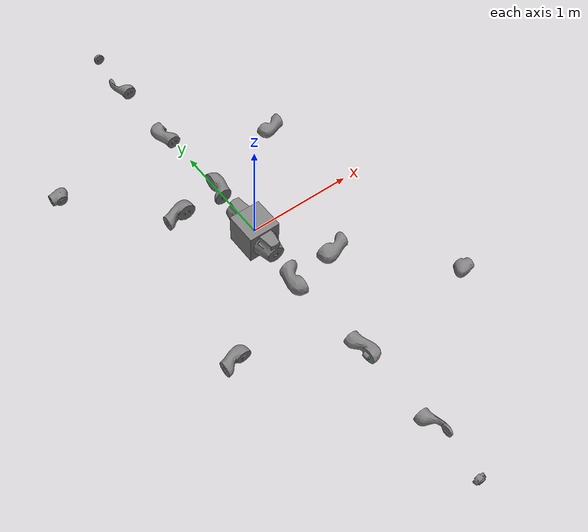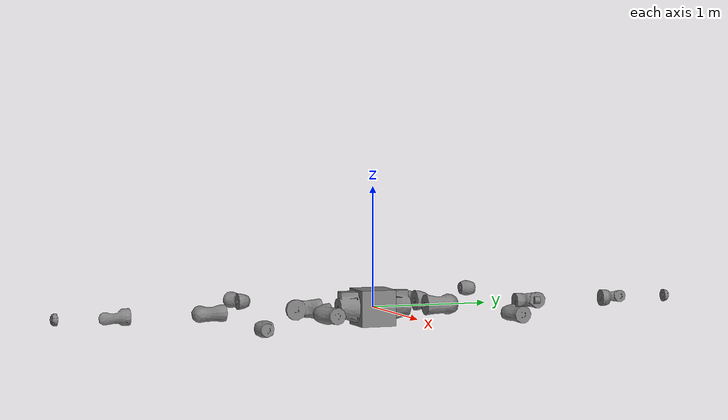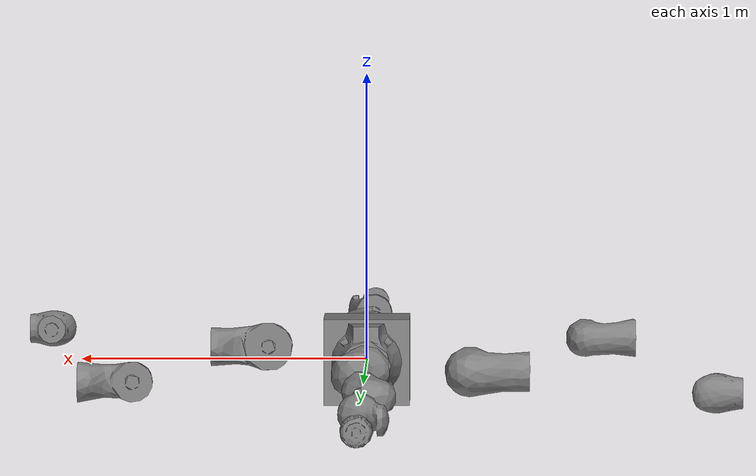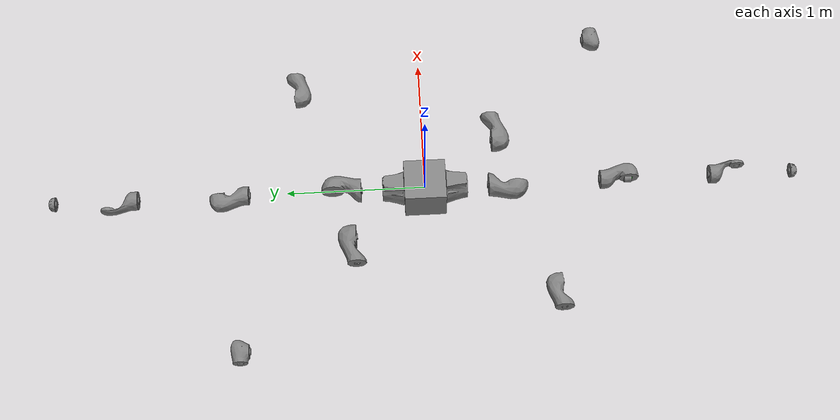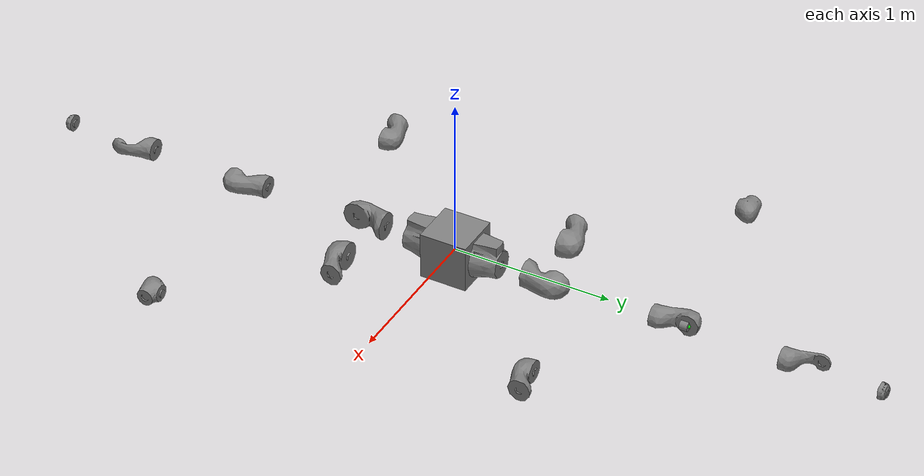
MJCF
<mujoco model="MLIVR">
  <compiler angle="radian"/>

  <default>
    <joint armature="1.0" frictionloss="1.0"/>
  </default>

  <asset>
    <mesh name="link_0" file="../../mlivr_description/meshes/iiwa14/collision/link_0.stl"/>
    <mesh name="link_1" file="../../mlivr_description/meshes/iiwa14/collision/link_1.stl"/>
    <mesh name="link_2" file="../../mlivr_description/meshes/iiwa14/collision/link_2.stl"/>
    <mesh name="link_3" file="../../mlivr_description/meshes/iiwa14/collision/link_3.stl"/>
    <mesh name="link_4" file="../../mlivr_description/meshes/iiwa14/collision/link_4.stl"/>
    <mesh name="link_5" file="../../mlivr_description/meshes/iiwa14/collision/link_5.stl"/>
    <mesh name="link_6" file="../../mlivr_description/meshes/iiwa14/collision/link_6.stl"/>
    <mesh name="link_7" file="../../mlivr_description/meshes/iiwa14/collision/link_7.stl"/>
  </asset>

  <worldbody>
    <body name="base_link">
      <freejoint name="root_joint"/>
      <inertial pos="0 0 0" mass="50" diaginertia="0.75 0.75 0.75"/>
      <geom size="0.15 0.15 0.15" type="box"/>
      <geom pos="0 0.15 0" quat="0.5 -0.5 0.5 0.5" type="mesh" mesh="link_0"/>
      <geom pos="0 -0.15 0" quat="-0.5 -0.5 -0.5 0.5" type="mesh" mesh="link_0"/>
      <body name="limb_1_link_1" pos="0 0.3075 0" quat="0.5 -0.5 0.5 0.5">
        <inertial pos="0 -0.03 0.12" mass="4" diaginertia="0.1 0.09 0.02"/>
        <joint name="limb_1_joint_1" pos="0 0 0" axis="0 0 1" range="-2.96706 2.96706" actuatorfrcrange="-300 300" damping="0.5"/>
        <geom type="mesh" mesh="link_1"/>
        <body name="limb_1_link_2" pos="0 0 0.2025" quat="0 0 0.707107 0.707107">
          <inertial pos="0.0003 0.059 0.042" quat="0.707107 0.707107 0 0" mass="4" diaginertia="0.05 0.044 0.018"/>
          <joint name="limb_1_joint_2" pos="0 0 0" axis="0 0 1" range="-2.0944 2.0944" actuatorfrcrange="-300 300" damping="0.5"/>
          <geom type="mesh" mesh="link_2"/>
          <body name="limb_1_link_3" pos="0 0.2045 0" quat="0 0 0.707107 0.707107">
            <inertial pos="0 0.03 0.13" mass="3" diaginertia="0.08 0.075 0.01"/>
            <joint name="limb_1_joint_3" pos="0 0 0" axis="0 0 1" range="-2.96706 2.96706" actuatorfrcrange="-300 300" damping="0.5"/>
            <geom type="mesh" mesh="link_3"/>
            <body name="limb_1_link_4" pos="0 0 0.2155" quat="0.707107 0.707107 0 0">
              <inertial pos="0 0.067 0.034" quat="0.707107 0.707107 0 0" mass="2.7" diaginertia="0.03 0.029 0.01"/>
              <joint name="limb_1_joint_4" pos="0 0 0" axis="0 0 1" range="-2.0944 2.0944" actuatorfrcrange="-300 300" damping="0.5"/>
              <geom type="mesh" mesh="link_4"/>
              <body name="limb_1_link_5" pos="0 0.1845 0" quat="0 0 0.707107 0.707107">
                <inertial pos="0.0001 0.021 0.076" mass="1.7" diaginertia="0.02 0.018 0.005"/>
                <joint name="limb_1_joint_5" pos="0 0 0" axis="0 0 1" range="-2.96706 2.96706" actuatorfrcrange="-300 300" damping="0.5"/>
                <geom type="mesh" mesh="link_5"/>
                <body name="limb_1_link_6" pos="0 0 0.2155" quat="0.707107 0.707107 0 0">
                  <inertial pos="0 0.0006 0.0004" quat="0.707107 0.707107 0 0" mass="1.8" diaginertia="0.005 0.0047 0.0036"/>
                  <joint name="limb_1_joint_6" pos="0 0 0" axis="0 0 1" range="-2.0944 2.0944" actuatorfrcrange="-300 300" damping="0.5"/>
                  <geom type="mesh" mesh="link_6"/>
                  <body name="limb_1_link_7" pos="0 0.081 0" quat="0 0 0.707107 0.707107">
                    <inertial pos="0 -0.028125 0.023125" quat="0.525786 0.472809 -0.472809 0.525786" mass="0.8" diaginertia="0.00183418 0.00181738 0.0014332"/>
                    <joint name="limb_1_joint_7" pos="0 0 0" axis="0 0 1" range="-3.05433 3.05433" actuatorfrcrange="-300 300" damping="0.5"/>
                    <geom type="mesh" mesh="link_7"/>
                    <geom size="0.03 0.025" pos="0 0 0.07" type="cylinder"/>
                    <site name="limb_1_gripper_site" pos="0 0 0.095" size="0.01" rgba="0 1 0 1" group="1"/>
                  </body>
                </body>
              </body>
            </body>
          </body>
        </body>
      </body>
      <body name="limb_2_link_1" pos="0 -0.3075 0" quat="-0.5 -0.5 -0.5 0.5">
        <inertial pos="0 -0.03 0.12" mass="4" diaginertia="0.1 0.09 0.02"/>
        <joint name="limb_2_joint_1" pos="0 0 0" axis="0 0 1" range="-2.96706 2.96706" actuatorfrcrange="-300 300" damping="0.5"/>
        <geom type="mesh" mesh="link_1"/>
        <body name="limb_2_link_2" pos="0 0 0.2025" quat="0 0 0.707107 0.707107">
          <inertial pos="0.0003 0.059 0.042" quat="0.707107 0.707107 0 0" mass="4" diaginertia="0.05 0.044 0.018"/>
          <joint name="limb_2_joint_2" pos="0 0 0" axis="0 0 1" range="-2.0944 2.0944" actuatorfrcrange="-300 300" damping="0.5"/>
          <geom type="mesh" mesh="link_2"/>
          <body name="limb_2_link_3" pos="0 0.2045 0" quat="0 0 0.707107 0.707107">
            <inertial pos="0 0.03 0.13" mass="3" diaginertia="0.08 0.075 0.01"/>
            <joint name="limb_2_joint_3" pos="0 0 0" axis="0 0 1" range="-2.96706 2.96706" actuatorfrcrange="-300 300" damping="0.5"/>
            <geom type="mesh" mesh="link_3"/>
            <body name="limb_2_link_4" pos="0 0 0.2155" quat="0.707107 0.707107 0 0">
              <inertial pos="0 0.067 0.034" quat="0.707107 0.707107 0 0" mass="2.7" diaginertia="0.03 0.029 0.01"/>
              <joint name="limb_2_joint_4" pos="0 0 0" axis="0 0 1" range="-2.0944 2.0944" actuatorfrcrange="-300 300" damping="0.5"/>
              <geom type="mesh" mesh="link_4"/>
              <body name="limb_2_link_5" pos="0 0.1845 0" quat="0 0 0.707107 0.707107">
                <inertial pos="0.0001 0.021 0.076" mass="1.7" diaginertia="0.02 0.018 0.005"/>
                <joint name="limb_2_joint_5" pos="0 0 0" axis="0 0 1" range="-2.96706 2.96706" actuatorfrcrange="-300 300" damping="0.5"/>
                <geom type="mesh" mesh="link_5"/>
                <body name="limb_2_link_6" pos="0 0 0.2155" quat="0.707107 0.707107 0 0">
                  <inertial pos="0 0.0006 0.0004" quat="0.707107 0.707107 0 0" mass="1.8" diaginertia="0.005 0.0047 0.0036"/>
                  <joint name="limb_2_joint_6" pos="0 0 0" axis="0 0 1" range="-2.0944 2.0944" actuatorfrcrange="-300 300" damping="0.5"/>
                  <geom type="mesh" mesh="link_6"/>
                  <body name="limb_2_link_7" pos="0 0.081 0" quat="0 0 0.707107 0.707107">
                    <inertial pos="0 -0.028125 0.023125" quat="0.525786 0.472809 -0.472809 0.525786" mass="0.8" diaginertia="0.00183418 0.00181738 0.0014332"/>
                    <joint name="limb_2_joint_7" pos="0 0 0" axis="0 0 1" range="-3.05433 3.05433" actuatorfrcrange="-300 300" damping="0.5"/>
                    <geom type="mesh" mesh="link_7"/>
                    <geom size="0.03 0.025" pos="0 0 0.07" type="cylinder"/>
                    <site name="limb_2_gripper_site" pos="0 0 0.095" size="0.01" rgba="0 1 0 1" group="1"/>
                  </body>
                </body>
              </body>
            </body>
          </body>
        </body>
      </body>
    </body>
  </worldbody>
</mujoco>
